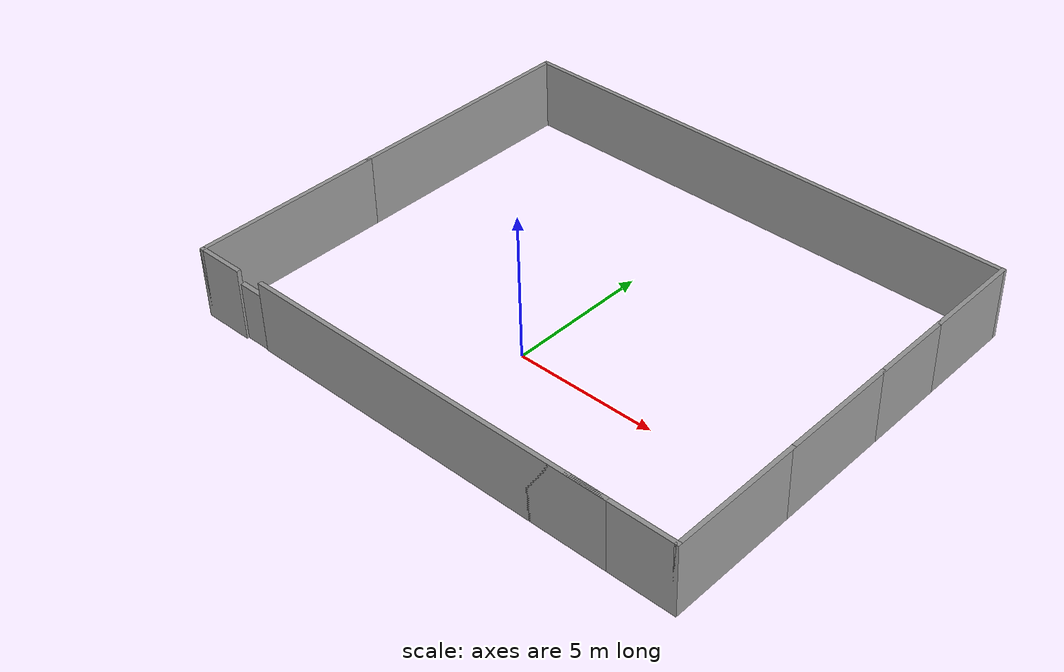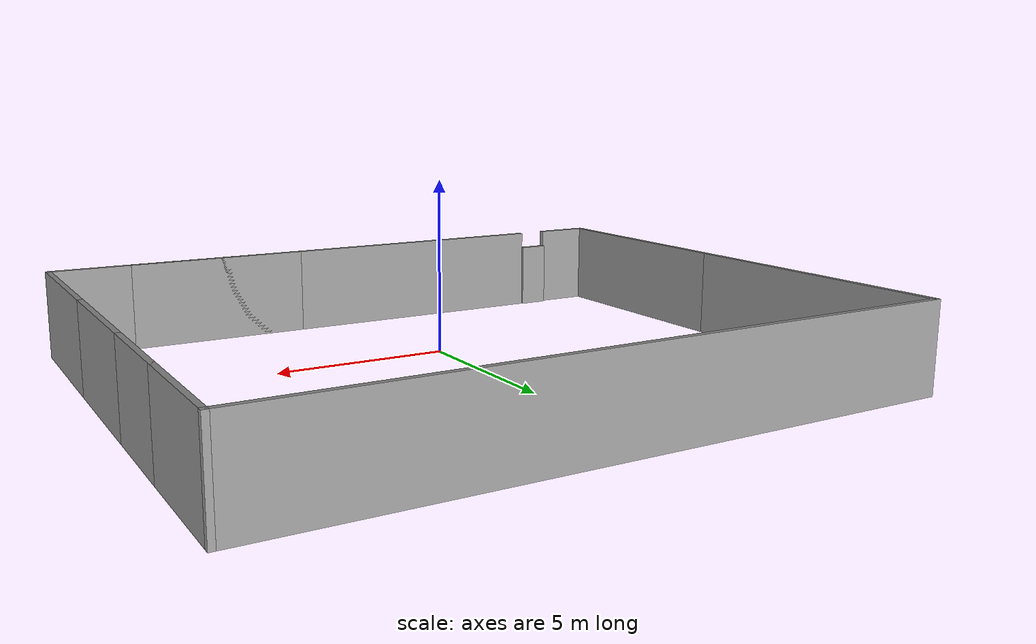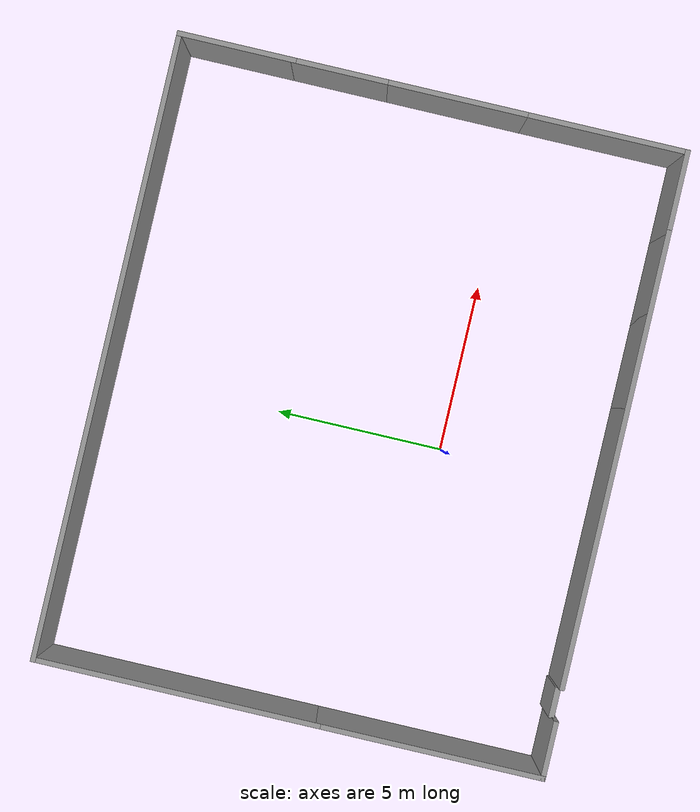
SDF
<?xml version='1.0'?>
<sdf version='1.7'>
  <model name='my_worls.world'>
    <pose>0.735 2.625 0 0 -0 0</pose>
    <link name='Door_0'>
      <collision name='Door_0_Collision'>
        <geometry>
          <box>
            <size>0.9 0.17 2</size>
          </box>
        </geometry>
        <pose>0 0 1 0 -0 0</pose>
      </collision>
      <visual name='Door_0_Visual'>
        <pose>0 0 1 0 -0 0</pose>
        <geometry>
          <box>
            <size>0.9 0.17 2</size>
          </box>
        </geometry>
        <material>
          <script>
            <uri>file://media/materials/scripts/gazebo.material</uri>
            <name>Gazebo/Grey</name>
          </script>
        </material>
      </visual>
      <pose>-7.07177 -7.39007 0 0 -0 0</pose>
    </link>
    <link name='Wall_0'>
      <collision name='Wall_0_Collision'>
        <geometry>
          <box>
            <size>13.5 0.15 2.5</size>
          </box>
        </geometry>
        <pose>0 0 1.25 0 -0 0</pose>
      </collision>
      <visual name='Wall_0_Visual'>
        <pose>0 0 1.25 0 -0 0</pose>
        <geometry>
          <box>
            <size>13.5 0.15 2.5</size>
          </box>
        </geometry>
        <material>
          <script>
            <uri>file://media/materials/scripts/gazebo.material</uri>
            <name>Gazebo/Grey</name>
          </script>
          <ambient>1 1 1 1</ambient>
        </material>
        <meta>
          <layer>0</layer>
        </meta>
      </visual>
      <pose>0.15 -7.425 0 0 -0 0</pose>
    </link>
    <link name='Wall_1'>
      <collision name='Wall_1_Collision'>
        <geometry>
          <box>
            <size>5.25 0.15 2.5</size>
          </box>
        </geometry>
        <pose>0 0 1.25 0 -0 0</pose>
      </collision>
      <visual name='Wall_1_Visual'>
        <pose>0 0 1.25 0 -0 0</pose>
        <geometry>
          <box>
            <size>5.25 0.15 2.5</size>
          </box>
        </geometry>
        <material>
          <script>
            <uri>file://media/materials/scripts/gazebo.material</uri>
            <name>Gazebo/Grey</name>
          </script>
          <ambient>1 1 1 1</ambient>
        </material>
        <meta>
          <layer>0</layer>
        </meta>
      </visual>
      <pose>4.275 -7.425 0 0 -0 3.14159</pose>
    </link>
    <link name='Wall_10'>
      <collision name='Wall_10_Collision'>
        <geometry>
          <box>
            <size>3.5 0.15 2.5</size>
          </box>
        </geometry>
        <pose>0 0 1.25 0 -0 0</pose>
      </collision>
      <visual name='Wall_10_Visual'>
        <pose>0 0 1.25 0 -0 0</pose>
        <geometry>
          <box>
            <size>3.5 0.15 2.5</size>
          </box>
        </geometry>
        <material>
          <script>
            <uri>file://media/materials/scripts/gazebo.material</uri>
            <name>Gazebo/Grey</name>
          </script>
          <ambient>1 1 1 1</ambient>
        </material>
        <meta>
          <layer>0</layer>
        </meta>
      </visual>
      <pose>9.175 5.8 0 0 -0 1.5708</pose>
    </link>
    <link name='Wall_11'>
      <collision name='Wall_11_Collision'>
        <geometry>
          <box>
            <size>18.5 0.15 2.5</size>
          </box>
        </geometry>
        <pose>0 0 1.25 0 -0 0</pose>
      </collision>
      <visual name='Wall_11_Visual'>
        <pose>0 0 1.25 0 -0 0</pose>
        <geometry>
          <box>
            <size>18.5 0.15 2.5</size>
          </box>
        </geometry>
        <material>
          <script>
            <uri>file://media/materials/scripts/gazebo.material</uri>
            <name>Gazebo/Grey</name>
          </script>
          <ambient>1 1 1 1</ambient>
        </material>
        <meta>
          <layer>0</layer>
        </meta>
      </visual>
      <pose>-0 7.475 0 0 -0 3.14159</pose>
    </link>
    <link name='Wall_12'>
      <collision name='Wall_12_Collision'>
        <geometry>
          <box>
            <size>8.5 0.15 2.5</size>
          </box>
        </geometry>
        <pose>0 0 1.25 0 -0 0</pose>
      </collision>
      <visual name='Wall_12_Visual'>
        <pose>0 0 1.25 0 -0 0</pose>
        <geometry>
          <box>
            <size>8.5 0.15 2.5</size>
          </box>
        </geometry>
        <material>
          <script>
            <uri>file://media/materials/scripts/gazebo.material</uri>
            <name>Gazebo/Grey</name>
          </script>
          <ambient>1 1 1 1</ambient>
        </material>
        <meta>
          <layer>0</layer>
        </meta>
      </visual>
      <pose>-9.175 3.3 0 0 -0 -1.5708</pose>
    </link>
    <link name='Wall_14'>
      <collision name='Wall_14_Collision'>
        <geometry>
          <box>
            <size>6.75 0.15 2.5</size>
          </box>
        </geometry>
        <pose>0 0 1.25 0 -0 0</pose>
      </collision>
      <visual name='Wall_14_Visual'>
        <pose>0 0 1.25 0 -0 0</pose>
        <geometry>
          <box>
            <size>6.75 0.15 2.5</size>
          </box>
        </geometry>
        <material>
          <script>
            <uri>file://media/materials/scripts/gazebo.material</uri>
            <name>Gazebo/Grey</name>
          </script>
          <ambient>1 1 1 1</ambient>
        </material>
        <meta>
          <layer>0</layer>
        </meta>
      </visual>
      <pose>-9.175 -4.175 0 0 -0 -1.5708</pose>
    </link>
    <link name='Wall_16'>
      <collision name='Wall_16_Collision'>
        <geometry>
          <box>
            <size>1.75 0.15 2.5</size>
          </box>
        </geometry>
        <pose>0 0 1.25 0 -0 0</pose>
      </collision>
      <visual name='Wall_16_Visual'>
        <pose>0 0 1.25 0 -0 0</pose>
        <geometry>
          <box>
            <size>1.75 0.15 2.5</size>
          </box>
        </geometry>
        <material>
          <script>
            <uri>file://media/materials/scripts/gazebo.material</uri>
            <name>Gazebo/Grey</name>
          </script>
          <ambient>1 1 1 1</ambient>
        </material>
        <meta>
          <layer>0</layer>
        </meta>
      </visual>
      <pose>-8.375 -7.475 0 0 -0 0</pose>
    </link>
    <link name='Wall_3'>
      <collision name='Wall_3_Collision'>
        <geometry>
          <box>
            <size>2.5 0.15 2.5</size>
          </box>
        </geometry>
        <pose>0 0 1.25 0 -0 0</pose>
      </collision>
      <visual name='Wall_3_Visual'>
        <pose>0 0 1.25 0 -0 0</pose>
        <geometry>
          <box>
            <size>2.5 0.15 2.5</size>
          </box>
        </geometry>
        <material>
          <script>
            <uri>file://media/materials/scripts/gazebo.material</uri>
            <name>Gazebo/Grey</name>
          </script>
          <ambient>1 1 1 1</ambient>
        </material>
        <meta>
          <layer>0</layer>
        </meta>
      </visual>
      <pose>8 -7.425 0 0 -0 0</pose>
    </link>
    <link name='Wall_4'>
      <collision name='Wall_4_Collision'>
        <geometry>
          <box>
            <size>4.75 0.15 2.5</size>
          </box>
        </geometry>
        <pose>0 0 1.25 0 -0 0</pose>
      </collision>
      <visual name='Wall_4_Visual'>
        <pose>0 0 1.25 0 -0 0</pose>
        <geometry>
          <box>
            <size>4.75 0.15 2.5</size>
          </box>
        </geometry>
        <material>
          <script>
            <uri>file://media/materials/scripts/gazebo.material</uri>
            <name>Gazebo/Grey</name>
          </script>
          <ambient>1 1 1 1</ambient>
        </material>
        <meta>
          <layer>0</layer>
        </meta>
      </visual>
      <pose>9.175 -5.125 0 0 -0 1.5708</pose>
    </link>
    <link name='Wall_6'>
      <collision name='Wall_6_Collision'>
        <geometry>
          <box>
            <size>4.25 0.15 2.5</size>
          </box>
        </geometry>
        <pose>0 0 1.25 0 -0 0</pose>
      </collision>
      <visual name='Wall_6_Visual'>
        <pose>0 0 1.25 0 -0 0</pose>
        <geometry>
          <box>
            <size>4.25 0.15 2.5</size>
          </box>
        </geometry>
        <material>
          <script>
            <uri>file://media/materials/scripts/gazebo.material</uri>
            <name>Gazebo/Grey</name>
          </script>
          <ambient>1 1 1 1</ambient>
        </material>
        <meta>
          <layer>0</layer>
        </meta>
      </visual>
      <pose>9.175 -0.775 0 0 -0 1.5708</pose>
    </link>
    <link name='Wall_8'>
      <collision name='Wall_8_Collision'>
        <geometry>
          <box>
            <size>3 0.15 2.5</size>
          </box>
        </geometry>
        <pose>0 0 1.25 0 -0 0</pose>
      </collision>
      <visual name='Wall_8_Visual'>
        <pose>0 0 1.25 0 -0 0</pose>
        <geometry>
          <box>
            <size>3 0.15 2.5</size>
          </box>
        </geometry>
        <material>
          <script>
            <uri>file://media/materials/scripts/gazebo.material</uri>
            <name>Gazebo/Grey</name>
          </script>
          <ambient>1 1 1 1</ambient>
        </material>
        <meta>
          <layer>0</layer>
        </meta>
      </visual>
      <pose>9.175 2.7 0 0 -0 1.5708</pose>
    </link>
    <static>1</static>
  </model>
</sdf>
